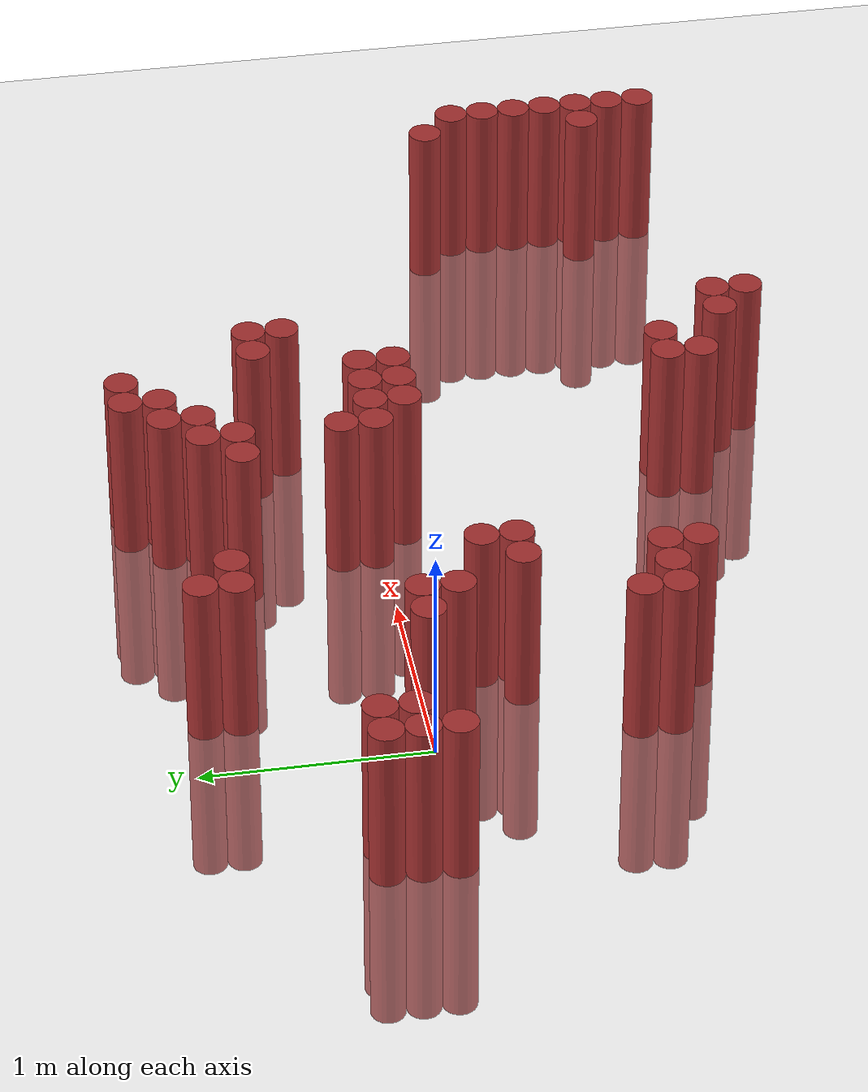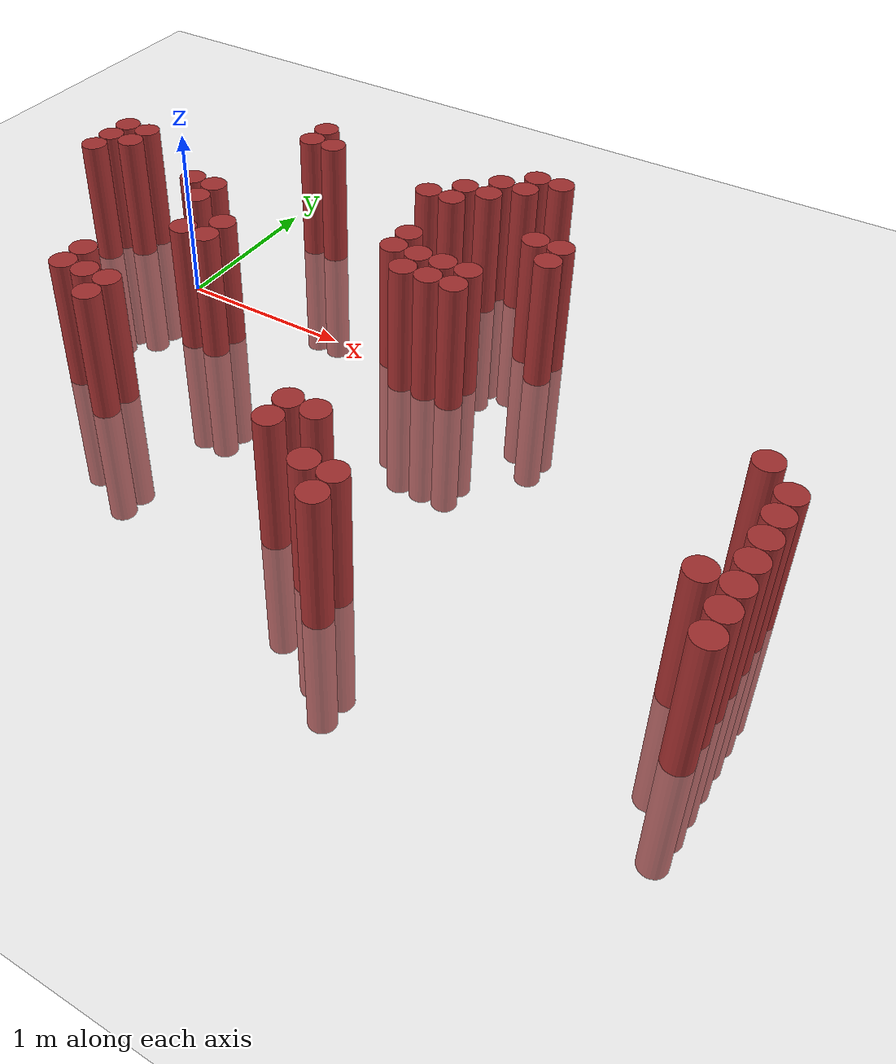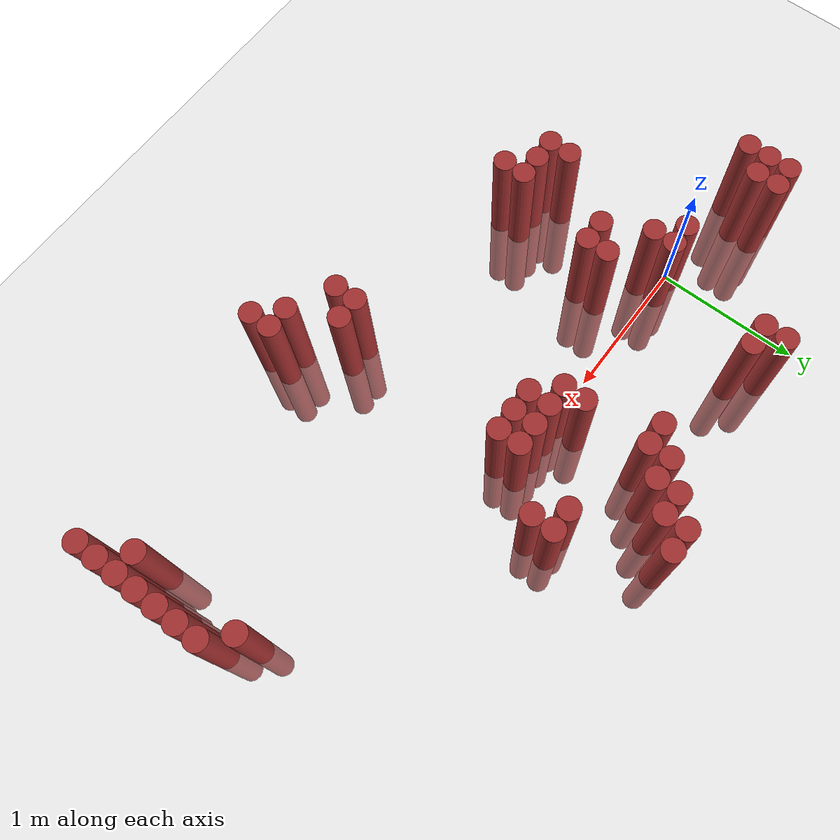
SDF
<sdf version="1.6">
 <world name="default">
  <model name="ground_plane">
   <static>1</static>
   <link name="link">
    <collision name="collision">
     <geometry><plane><normal>0 0 1</normal><size>100 100</size></plane></geometry>
     <surface><friction><ode><mu>100</mu><mu2>50</mu2></ode></friction></surface>
    </collision>
    <visual name="visual">
     <cast_shadows>0</cast_shadows>
     <geometry><plane><normal>0 0 1</normal><size>100 100</size></plane></geometry>
     <material>
      <script><uri>file://media/materials/scripts/gazebo.material</uri><name>Gazebo/Grey</name></script>
     </material>
    </visual>
   </link>
  </model>
  <model name="unit_cylinder_349">
   <static>1</static>
   <pose>-0.725000 0.025000 0.000000 0.000000 0.000000 0.000000</pose>
   <link name="link">
    <inertial>
     <mass>1</mass>
     <inertia><ixx>0.145833</ixx><ixy>0</ixy><ixz>0</ixz><iyy>0.145833</iyy><iyz>0</iyz><izz>0.125</izz></inertia>
    </inertial>
    <collision name="collision">
     <geometry><cylinder><radius>0.075000</radius><length>1.5</length></cylinder></geometry>
    </collision>
    <visual name="visual">
     <geometry><cylinder><radius>0.075000</radius><length>1.5</length></cylinder></geometry>
     <material>
      <ambient>0.648000 0.192000 0.192000 1</ambient>
      <diffuse>0.648000 0.192000 0.192000 1</diffuse>
     </material>
     <material>
      <script><name>Gazebo/Grey</name><uri>file://media/materials/scripts/gazebo.material</uri></script>
     </material>
    </visual>
   </link>
  </model>
  <model name="unit_cylinder_350">
   <static>1</static>
   <pose>-0.725000 0.175000 0.000000 0.000000 0.000000 0.000000</pose>
   <link name="link">
    <inertial>
     <mass>1</mass>
     <inertia><ixx>0.145833</ixx><ixy>0</ixy><ixz>0</ixz><iyy>0.145833</iyy><iyz>0</iyz><izz>0.125</izz></inertia>
    </inertial>
    <collision name="collision">
     <geometry><cylinder><radius>0.075000</radius><length>1.5</length></cylinder></geometry>
    </collision>
    <visual name="visual">
     <geometry><cylinder><radius>0.075000</radius><length>1.5</length></cylinder></geometry>
     <material>
      <ambient>0.648000 0.192000 0.192000 1</ambient>
      <diffuse>0.648000 0.192000 0.192000 1</diffuse>
     </material>
     <material>
      <script><name>Gazebo/Grey</name><uri>file://media/materials/scripts/gazebo.material</uri></script>
     </material>
    </visual>
   </link>
  </model>
  <model name="unit_cylinder_351">
   <static>1</static>
   <pose>-0.725000 0.325000 0.000000 0.000000 0.000000 0.000000</pose>
   <link name="link">
    <inertial>
     <mass>1</mass>
     <inertia><ixx>0.145833</ixx><ixy>0</ixy><ixz>0</ixz><iyy>0.145833</iyy><iyz>0</iyz><izz>0.125</izz></inertia>
    </inertial>
    <collision name="collision">
     <geometry><cylinder><radius>0.075000</radius><length>1.5</length></cylinder></geometry>
    </collision>
    <visual name="visual">
     <geometry><cylinder><radius>0.075000</radius><length>1.5</length></cylinder></geometry>
     <material>
      <ambient>0.648000 0.192000 0.192000 1</ambient>
      <diffuse>0.648000 0.192000 0.192000 1</diffuse>
     </material>
     <material>
      <script><name>Gazebo/Grey</name><uri>file://media/materials/scripts/gazebo.material</uri></script>
     </material>
    </visual>
   </link>
  </model>
  <model name="unit_cylinder_352">
   <static>1</static>
   <pose>-0.575000 0.175000 0.000000 0.000000 0.000000 0.000000</pose>
   <link name="link">
    <inertial>
     <mass>1</mass>
     <inertia><ixx>0.145833</ixx><ixy>0</ixy><ixz>0</ixz><iyy>0.145833</iyy><iyz>0</iyz><izz>0.125</izz></inertia>
    </inertial>
    <collision name="collision">
     <geometry><cylinder><radius>0.075000</radius><length>1.5</length></cylinder></geometry>
    </collision>
    <visual name="visual">
     <geometry><cylinder><radius>0.075000</radius><length>1.5</length></cylinder></geometry>
     <material>
      <ambient>0.648000 0.192000 0.192000 1</ambient>
      <diffuse>0.648000 0.192000 0.192000 1</diffuse>
     </material>
     <material>
      <script><name>Gazebo/Grey</name><uri>file://media/materials/scripts/gazebo.material</uri></script>
     </material>
    </visual>
   </link>
  </model>
  <model name="unit_cylinder_353">
   <static>1</static>
   <pose>-0.575000 0.325000 0.000000 0.000000 0.000000 0.000000</pose>
   <link name="link">
    <inertial>
     <mass>1</mass>
     <inertia><ixx>0.145833</ixx><ixy>0</ixy><ixz>0</ixz><iyy>0.145833</iyy><iyz>0</iyz><izz>0.125</izz></inertia>
    </inertial>
    <collision name="collision">
     <geometry><cylinder><radius>0.075000</radius><length>1.5</length></cylinder></geometry>
    </collision>
    <visual name="visual">
     <geometry><cylinder><radius>0.075000</radius><length>1.5</length></cylinder></geometry>
     <material>
      <ambient>0.648000 0.192000 0.192000 1</ambient>
      <diffuse>0.648000 0.192000 0.192000 1</diffuse>
     </material>
     <material>
      <script><name>Gazebo/Grey</name><uri>file://media/materials/scripts/gazebo.material</uri></script>
     </material>
    </visual>
   </link>
  </model>
  <model name="unit_cylinder_360">
   <static>1</static>
   <pose>0.025000 -1.025000 0.000000 0.000000 0.000000 0.000000</pose>
   <link name="link">
    <inertial>
     <mass>1</mass>
     <inertia><ixx>0.145833</ixx><ixy>0</ixy><ixz>0</ixz><iyy>0.145833</iyy><iyz>0</iyz><izz>0.125</izz></inertia>
    </inertial>
    <collision name="collision">
     <geometry><cylinder><radius>0.075000</radius><length>1.5</length></cylinder></geometry>
    </collision>
    <visual name="visual">
     <geometry><cylinder><radius>0.075000</radius><length>1.5</length></cylinder></geometry>
     <material>
      <ambient>0.648000 0.192000 0.192000 1</ambient>
      <diffuse>0.648000 0.192000 0.192000 1</diffuse>
     </material>
     <material>
      <script><name>Gazebo/Grey</name><uri>file://media/materials/scripts/gazebo.material</uri></script>
     </material>
    </visual>
   </link>
  </model>
  <model name="unit_cylinder_361">
   <static>1</static>
   <pose>0.025000 -0.875000 0.000000 0.000000 0.000000 0.000000</pose>
   <link name="link">
    <inertial>
     <mass>1</mass>
     <inertia><ixx>0.145833</ixx><ixy>0</ixy><ixz>0</ixz><iyy>0.145833</iyy><iyz>0</iyz><izz>0.125</izz></inertia>
    </inertial>
    <collision name="collision">
     <geometry><cylinder><radius>0.075000</radius><length>1.5</length></cylinder></geometry>
    </collision>
    <visual name="visual">
     <geometry><cylinder><radius>0.075000</radius><length>1.5</length></cylinder></geometry>
     <material>
      <ambient>0.648000 0.192000 0.192000 1</ambient>
      <diffuse>0.648000 0.192000 0.192000 1</diffuse>
     </material>
     <material>
      <script><name>Gazebo/Grey</name><uri>file://media/materials/scripts/gazebo.material</uri></script>
     </material>
    </visual>
   </link>
  </model>
  <model name="unit_cylinder_362">
   <static>1</static>
   <pose>0.025000 0.025000 0.000000 0.000000 0.000000 0.000000</pose>
   <link name="link">
    <inertial>
     <mass>1</mass>
     <inertia><ixx>0.145833</ixx><ixy>0</ixy><ixz>0</ixz><iyy>0.145833</iyy><iyz>0</iyz><izz>0.125</izz></inertia>
    </inertial>
    <collision name="collision">
     <geometry><cylinder><radius>0.075000</radius><length>1.5</length></cylinder></geometry>
    </collision>
    <visual name="visual">
     <geometry><cylinder><radius>0.075000</radius><length>1.5</length></cylinder></geometry>
     <material>
      <ambient>0.648000 0.192000 0.192000 1</ambient>
      <diffuse>0.648000 0.192000 0.192000 1</diffuse>
     </material>
     <material>
      <script><name>Gazebo/Grey</name><uri>file://media/materials/scripts/gazebo.material</uri></script>
     </material>
    </visual>
   </link>
  </model>
  <model name="unit_cylinder_365">
   <static>1</static>
   <pose>0.175000 -1.025000 0.000000 0.000000 0.000000 0.000000</pose>
   <link name="link">
    <inertial>
     <mass>1</mass>
     <inertia><ixx>0.145833</ixx><ixy>0</ixy><ixz>0</ixz><iyy>0.145833</iyy><iyz>0</iyz><izz>0.125</izz></inertia>
    </inertial>
    <collision name="collision">
     <geometry><cylinder><radius>0.075000</radius><length>1.5</length></cylinder></geometry>
    </collision>
    <visual name="visual">
     <geometry><cylinder><radius>0.075000</radius><length>1.5</length></cylinder></geometry>
     <material>
      <ambient>0.648000 0.192000 0.192000 1</ambient>
      <diffuse>0.648000 0.192000 0.192000 1</diffuse>
     </material>
     <material>
      <script><name>Gazebo/Grey</name><uri>file://media/materials/scripts/gazebo.material</uri></script>
     </material>
    </visual>
   </link>
  </model>
  <model name="unit_cylinder_366">
   <static>1</static>
   <pose>0.175000 -0.125000 0.000000 0.000000 0.000000 0.000000</pose>
   <link name="link">
    <inertial>
     <mass>1</mass>
     <inertia><ixx>0.145833</ixx><ixy>0</ixy><ixz>0</ixz><iyy>0.145833</iyy><iyz>0</iyz><izz>0.125</izz></inertia>
    </inertial>
    <collision name="collision">
     <geometry><cylinder><radius>0.075000</radius><length>1.5</length></cylinder></geometry>
    </collision>
    <visual name="visual">
     <geometry><cylinder><radius>0.075000</radius><length>1.5</length></cylinder></geometry>
     <material>
      <ambient>0.648000 0.192000 0.192000 1</ambient>
      <diffuse>0.648000 0.192000 0.192000 1</diffuse>
     </material>
     <material>
      <script><name>Gazebo/Grey</name><uri>file://media/materials/scripts/gazebo.material</uri></script>
     </material>
    </visual>
   </link>
  </model>
  <model name="unit_cylinder_367">
   <static>1</static>
   <pose>0.175000 0.025000 0.000000 0.000000 0.000000 0.000000</pose>
   <link name="link">
    <inertial>
     <mass>1</mass>
     <inertia><ixx>0.145833</ixx><ixy>0</ixy><ixz>0</ixz><iyy>0.145833</iyy><iyz>0</iyz><izz>0.125</izz></inertia>
    </inertial>
    <collision name="collision">
     <geometry><cylinder><radius>0.075000</radius><length>1.5</length></cylinder></geometry>
    </collision>
    <visual name="visual">
     <geometry><cylinder><radius>0.075000</radius><length>1.5</length></cylinder></geometry>
     <material>
      <ambient>0.648000 0.192000 0.192000 1</ambient>
      <diffuse>0.648000 0.192000 0.192000 1</diffuse>
     </material>
     <material>
      <script><name>Gazebo/Grey</name><uri>file://media/materials/scripts/gazebo.material</uri></script>
     </material>
    </visual>
   </link>
  </model>
  <model name="unit_cylinder_369">
   <static>1</static>
   <pose>0.325000 -1.175000 0.000000 0.000000 0.000000 0.000000</pose>
   <link name="link">
    <inertial>
     <mass>1</mass>
     <inertia><ixx>0.145833</ixx><ixy>0</ixy><ixz>0</ixz><iyy>0.145833</iyy><iyz>0</iyz><izz>0.125</izz></inertia>
    </inertial>
    <collision name="collision">
     <geometry><cylinder><radius>0.075000</radius><length>1.5</length></cylinder></geometry>
    </collision>
    <visual name="visual">
     <geometry><cylinder><radius>0.075000</radius><length>1.5</length></cylinder></geometry>
     <material>
      <ambient>0.648000 0.192000 0.192000 1</ambient>
      <diffuse>0.648000 0.192000 0.192000 1</diffuse>
     </material>
     <material>
      <script><name>Gazebo/Grey</name><uri>file://media/materials/scripts/gazebo.material</uri></script>
     </material>
    </visual>
   </link>
  </model>
  <model name="unit_cylinder_370">
   <static>1</static>
   <pose>0.325000 -1.025000 0.000000 0.000000 0.000000 0.000000</pose>
   <link name="link">
    <inertial>
     <mass>1</mass>
     <inertia><ixx>0.145833</ixx><ixy>0</ixy><ixz>0</ixz><iyy>0.145833</iyy><iyz>0</iyz><izz>0.125</izz></inertia>
    </inertial>
    <collision name="collision">
     <geometry><cylinder><radius>0.075000</radius><length>1.5</length></cylinder></geometry>
    </collision>
    <visual name="visual">
     <geometry><cylinder><radius>0.075000</radius><length>1.5</length></cylinder></geometry>
     <material>
      <ambient>0.648000 0.192000 0.192000 1</ambient>
      <diffuse>0.648000 0.192000 0.192000 1</diffuse>
     </material>
     <material>
      <script><name>Gazebo/Grey</name><uri>file://media/materials/scripts/gazebo.material</uri></script>
     </material>
    </visual>
   </link>
  </model>
  <model name="unit_cylinder_371">
   <static>1</static>
   <pose>0.325000 -0.425000 0.000000 0.000000 0.000000 0.000000</pose>
   <link name="link">
    <inertial>
     <mass>1</mass>
     <inertia><ixx>0.145833</ixx><ixy>0</ixy><ixz>0</ixz><iyy>0.145833</iyy><iyz>0</iyz><izz>0.125</izz></inertia>
    </inertial>
    <collision name="collision">
     <geometry><cylinder><radius>0.075000</radius><length>1.5</length></cylinder></geometry>
    </collision>
    <visual name="visual">
     <geometry><cylinder><radius>0.075000</radius><length>1.5</length></cylinder></geometry>
     <material>
      <ambient>0.648000 0.192000 0.192000 1</ambient>
      <diffuse>0.648000 0.192000 0.192000 1</diffuse>
     </material>
     <material>
      <script><name>Gazebo/Grey</name><uri>file://media/materials/scripts/gazebo.material</uri></script>
     </material>
    </visual>
   </link>
  </model>
  <model name="unit_cylinder_372">
   <static>1</static>
   <pose>0.325000 0.775000 0.000000 0.000000 0.000000 0.000000</pose>
   <link name="link">
    <inertial>
     <mass>1</mass>
     <inertia><ixx>0.145833</ixx><ixy>0</ixy><ixz>0</ixz><iyy>0.145833</iyy><iyz>0</iyz><izz>0.125</izz></inertia>
    </inertial>
    <collision name="collision">
     <geometry><cylinder><radius>0.075000</radius><length>1.5</length></cylinder></geometry>
    </collision>
    <visual name="visual">
     <geometry><cylinder><radius>0.075000</radius><length>1.5</length></cylinder></geometry>
     <material>
      <ambient>0.648000 0.192000 0.192000 1</ambient>
      <diffuse>0.648000 0.192000 0.192000 1</diffuse>
     </material>
     <material>
      <script><name>Gazebo/Grey</name><uri>file://media/materials/scripts/gazebo.material</uri></script>
     </material>
    </visual>
   </link>
  </model>
  <model name="unit_cylinder_373">
   <static>1</static>
   <pose>0.325000 0.925000 0.000000 0.000000 0.000000 0.000000</pose>
   <link name="link">
    <inertial>
     <mass>1</mass>
     <inertia><ixx>0.145833</ixx><ixy>0</ixy><ixz>0</ixz><iyy>0.145833</iyy><iyz>0</iyz><izz>0.125</izz></inertia>
    </inertial>
    <collision name="collision">
     <geometry><cylinder><radius>0.075000</radius><length>1.5</length></cylinder></geometry>
    </collision>
    <visual name="visual">
     <geometry><cylinder><radius>0.075000</radius><length>1.5</length></cylinder></geometry>
     <material>
      <ambient>0.648000 0.192000 0.192000 1</ambient>
      <diffuse>0.648000 0.192000 0.192000 1</diffuse>
     </material>
     <material>
      <script><name>Gazebo/Grey</name><uri>file://media/materials/scripts/gazebo.material</uri></script>
     </material>
    </visual>
   </link>
  </model>
  <model name="unit_cylinder_375">
   <static>1</static>
   <pose>0.475000 -0.425000 0.000000 0.000000 0.000000 0.000000</pose>
   <link name="link">
    <inertial>
     <mass>1</mass>
     <inertia><ixx>0.145833</ixx><ixy>0</ixy><ixz>0</ixz><iyy>0.145833</iyy><iyz>0</iyz><izz>0.125</izz></inertia>
    </inertial>
    <collision name="collision">
     <geometry><cylinder><radius>0.075000</radius><length>1.5</length></cylinder></geometry>
    </collision>
    <visual name="visual">
     <geometry><cylinder><radius>0.075000</radius><length>1.5</length></cylinder></geometry>
     <material>
      <ambient>0.648000 0.192000 0.192000 1</ambient>
      <diffuse>0.648000 0.192000 0.192000 1</diffuse>
     </material>
     <material>
      <script><name>Gazebo/Grey</name><uri>file://media/materials/scripts/gazebo.material</uri></script>
     </material>
    </visual>
   </link>
  </model>
  <model name="unit_cylinder_376">
   <static>1</static>
   <pose>0.475000 -0.275000 0.000000 0.000000 0.000000 0.000000</pose>
   <link name="link">
    <inertial>
     <mass>1</mass>
     <inertia><ixx>0.145833</ixx><ixy>0</ixy><ixz>0</ixz><iyy>0.145833</iyy><iyz>0</iyz><izz>0.125</izz></inertia>
    </inertial>
    <collision name="collision">
     <geometry><cylinder><radius>0.075000</radius><length>1.5</length></cylinder></geometry>
    </collision>
    <visual name="visual">
     <geometry><cylinder><radius>0.075000</radius><length>1.5</length></cylinder></geometry>
     <material>
      <ambient>0.648000 0.192000 0.192000 1</ambient>
      <diffuse>0.648000 0.192000 0.192000 1</diffuse>
     </material>
     <material>
      <script><name>Gazebo/Grey</name><uri>file://media/materials/scripts/gazebo.material</uri></script>
     </material>
    </visual>
   </link>
  </model>
  <model name="unit_cylinder_377">
   <static>1</static>
   <pose>0.475000 0.775000 0.000000 0.000000 0.000000 0.000000</pose>
   <link name="link">
    <inertial>
     <mass>1</mass>
     <inertia><ixx>0.145833</ixx><ixy>0</ixy><ixz>0</ixz><iyy>0.145833</iyy><iyz>0</iyz><izz>0.125</izz></inertia>
    </inertial>
    <collision name="collision">
     <geometry><cylinder><radius>0.075000</radius><length>1.5</length></cylinder></geometry>
    </collision>
    <visual name="visual">
     <geometry><cylinder><radius>0.075000</radius><length>1.5</length></cylinder></geometry>
     <material>
      <ambient>0.648000 0.192000 0.192000 1</ambient>
      <diffuse>0.648000 0.192000 0.192000 1</diffuse>
     </material>
     <material>
      <script><name>Gazebo/Grey</name><uri>file://media/materials/scripts/gazebo.material</uri></script>
     </material>
    </visual>
   </link>
  </model>
  <model name="unit_cylinder_388">
   <static>1</static>
   <pose>1.225000 0.625000 0.000000 0.000000 0.000000 0.000000</pose>
   <link name="link">
    <inertial>
     <mass>1</mass>
     <inertia><ixx>0.145833</ixx><ixy>0</ixy><ixz>0</ixz><iyy>0.145833</iyy><iyz>0</iyz><izz>0.125</izz></inertia>
    </inertial>
    <collision name="collision">
     <geometry><cylinder><radius>0.075000</radius><length>1.5</length></cylinder></geometry>
    </collision>
    <visual name="visual">
     <geometry><cylinder><radius>0.075000</radius><length>1.5</length></cylinder></geometry>
     <material>
      <ambient>0.648000 0.192000 0.192000 1</ambient>
      <diffuse>0.648000 0.192000 0.192000 1</diffuse>
     </material>
     <material>
      <script><name>Gazebo/Grey</name><uri>file://media/materials/scripts/gazebo.material</uri></script>
     </material>
    </visual>
   </link>
  </model>
  <model name="unit_cylinder_389">
   <static>1</static>
   <pose>1.375000 0.025000 0.000000 0.000000 0.000000 0.000000</pose>
   <link name="link">
    <inertial>
     <mass>1</mass>
     <inertia><ixx>0.145833</ixx><ixy>0</ixy><ixz>0</ixz><iyy>0.145833</iyy><iyz>0</iyz><izz>0.125</izz></inertia>
    </inertial>
    <collision name="collision">
     <geometry><cylinder><radius>0.075000</radius><length>1.5</length></cylinder></geometry>
    </collision>
    <visual name="visual">
     <geometry><cylinder><radius>0.075000</radius><length>1.5</length></cylinder></geometry>
     <material>
      <ambient>0.648000 0.192000 0.192000 1</ambient>
      <diffuse>0.648000 0.192000 0.192000 1</diffuse>
     </material>
     <material>
      <script><name>Gazebo/Grey</name><uri>file://media/materials/scripts/gazebo.material</uri></script>
     </material>
    </visual>
   </link>
  </model>
  <model name="unit_cylinder_390">
   <static>1</static>
   <pose>1.375000 0.175000 0.000000 0.000000 0.000000 0.000000</pose>
   <link name="link">
    <inertial>
     <mass>1</mass>
     <inertia><ixx>0.145833</ixx><ixy>0</ixy><ixz>0</ixz><iyy>0.145833</iyy><iyz>0</iyz><izz>0.125</izz></inertia>
    </inertial>
    <collision name="collision">
     <geometry><cylinder><radius>0.075000</radius><length>1.5</length></cylinder></geometry>
    </collision>
    <visual name="visual">
     <geometry><cylinder><radius>0.075000</radius><length>1.5</length></cylinder></geometry>
     <material>
      <ambient>0.648000 0.192000 0.192000 1</ambient>
      <diffuse>0.648000 0.192000 0.192000 1</diffuse>
     </material>
     <material>
      <script><name>Gazebo/Grey</name><uri>file://media/materials/scripts/gazebo.material</uri></script>
     </material>
    </visual>
   </link>
  </model>
  <model name="unit_cylinder_391">
   <static>1</static>
   <pose>1.375000 0.625000 0.000000 0.000000 0.000000 0.000000</pose>
   <link name="link">
    <inertial>
     <mass>1</mass>
     <inertia><ixx>0.145833</ixx><ixy>0</ixy><ixz>0</ixz><iyy>0.145833</iyy><iyz>0</iyz><izz>0.125</izz></inertia>
    </inertial>
    <collision name="collision">
     <geometry><cylinder><radius>0.075000</radius><length>1.5</length></cylinder></geometry>
    </collision>
    <visual name="visual">
     <geometry><cylinder><radius>0.075000</radius><length>1.5</length></cylinder></geometry>
     <material>
      <ambient>0.648000 0.192000 0.192000 1</ambient>
      <diffuse>0.648000 0.192000 0.192000 1</diffuse>
     </material>
     <material>
      <script><name>Gazebo/Grey</name><uri>file://media/materials/scripts/gazebo.material</uri></script>
     </material>
    </visual>
   </link>
  </model>
  <model name="unit_cylinder_392">
   <static>1</static>
   <pose>1.375000 0.775000 0.000000 0.000000 0.000000 0.000000</pose>
   <link name="link">
    <inertial>
     <mass>1</mass>
     <inertia><ixx>0.145833</ixx><ixy>0</ixy><ixz>0</ixz><iyy>0.145833</iyy><iyz>0</iyz><izz>0.125</izz></inertia>
    </inertial>
    <collision name="collision">
     <geometry><cylinder><radius>0.075000</radius><length>1.5</length></cylinder></geometry>
    </collision>
    <visual name="visual">
     <geometry><cylinder><radius>0.075000</radius><length>1.5</length></cylinder></geometry>
     <material>
      <ambient>0.648000 0.192000 0.192000 1</ambient>
      <diffuse>0.648000 0.192000 0.192000 1</diffuse>
     </material>
     <material>
      <script><name>Gazebo/Grey</name><uri>file://media/materials/scripts/gazebo.material</uri></script>
     </material>
    </visual>
   </link>
  </model>
  <model name="unit_cylinder_393">
   <static>1</static>
   <pose>1.525000 -0.125000 0.000000 0.000000 0.000000 0.000000</pose>
   <link name="link">
    <inertial>
     <mass>1</mass>
     <inertia><ixx>0.145833</ixx><ixy>0</ixy><ixz>0</ixz><iyy>0.145833</iyy><iyz>0</iyz><izz>0.125</izz></inertia>
    </inertial>
    <collision name="collision">
     <geometry><cylinder><radius>0.075000</radius><length>1.5</length></cylinder></geometry>
    </collision>
    <visual name="visual">
     <geometry><cylinder><radius>0.075000</radius><length>1.5</length></cylinder></geometry>
     <material>
      <ambient>0.648000 0.192000 0.192000 1</ambient>
      <diffuse>0.648000 0.192000 0.192000 1</diffuse>
     </material>
     <material>
      <script><name>Gazebo/Grey</name><uri>file://media/materials/scripts/gazebo.material</uri></script>
     </material>
    </visual>
   </link>
  </model>
  <model name="unit_cylinder_394">
   <static>1</static>
   <pose>1.525000 0.025000 0.000000 0.000000 0.000000 0.000000</pose>
   <link name="link">
    <inertial>
     <mass>1</mass>
     <inertia><ixx>0.145833</ixx><ixy>0</ixy><ixz>0</ixz><iyy>0.145833</iyy><iyz>0</iyz><izz>0.125</izz></inertia>
    </inertial>
    <collision name="collision">
     <geometry><cylinder><radius>0.075000</radius><length>1.5</length></cylinder></geometry>
    </collision>
    <visual name="visual">
     <geometry><cylinder><radius>0.075000</radius><length>1.5</length></cylinder></geometry>
     <material>
      <ambient>0.648000 0.192000 0.192000 1</ambient>
      <diffuse>0.648000 0.192000 0.192000 1</diffuse>
     </material>
     <material>
      <script><name>Gazebo/Grey</name><uri>file://media/materials/scripts/gazebo.material</uri></script>
     </material>
    </visual>
   </link>
  </model>
  <model name="unit_cylinder_395">
   <static>1</static>
   <pose>1.525000 0.775000 0.000000 0.000000 0.000000 0.000000</pose>
   <link name="link">
    <inertial>
     <mass>1</mass>
     <inertia><ixx>0.145833</ixx><ixy>0</ixy><ixz>0</ixz><iyy>0.145833</iyy><iyz>0</iyz><izz>0.125</izz></inertia>
    </inertial>
    <collision name="collision">
     <geometry><cylinder><radius>0.075000</radius><length>1.5</length></cylinder></geometry>
    </collision>
    <visual name="visual">
     <geometry><cylinder><radius>0.075000</radius><length>1.5</length></cylinder></geometry>
     <material>
      <ambient>0.648000 0.192000 0.192000 1</ambient>
      <diffuse>0.648000 0.192000 0.192000 1</diffuse>
     </material>
     <material>
      <script><name>Gazebo/Grey</name><uri>file://media/materials/scripts/gazebo.material</uri></script>
     </material>
    </visual>
   </link>
  </model>
  <model name="unit_cylinder_396">
   <static>1</static>
   <pose>1.525000 0.925000 0.000000 0.000000 0.000000 0.000000</pose>
   <link name="link">
    <inertial>
     <mass>1</mass>
     <inertia><ixx>0.145833</ixx><ixy>0</ixy><ixz>0</ixz><iyy>0.145833</iyy><iyz>0</iyz><izz>0.125</izz></inertia>
    </inertial>
    <collision name="collision">
     <geometry><cylinder><radius>0.075000</radius><length>1.5</length></cylinder></geometry>
    </collision>
    <visual name="visual">
     <geometry><cylinder><radius>0.075000</radius><length>1.5</length></cylinder></geometry>
     <material>
      <ambient>0.648000 0.192000 0.192000 1</ambient>
      <diffuse>0.648000 0.192000 0.192000 1</diffuse>
     </material>
     <material>
      <script><name>Gazebo/Grey</name><uri>file://media/materials/scripts/gazebo.material</uri></script>
     </material>
    </visual>
   </link>
  </model>
  <model name="unit_cylinder_397">
   <static>1</static>
   <pose>1.675000 -1.475000 0.000000 0.000000 0.000000 0.000000</pose>
   <link name="link">
    <inertial>
     <mass>1</mass>
     <inertia><ixx>0.145833</ixx><ixy>0</ixy><ixz>0</ixz><iyy>0.145833</iyy><iyz>0</iyz><izz>0.125</izz></inertia>
    </inertial>
    <collision name="collision">
     <geometry><cylinder><radius>0.075000</radius><length>1.5</length></cylinder></geometry>
    </collision>
    <visual name="visual">
     <geometry><cylinder><radius>0.075000</radius><length>1.5</length></cylinder></geometry>
     <material>
      <ambient>0.648000 0.192000 0.192000 1</ambient>
      <diffuse>0.648000 0.192000 0.192000 1</diffuse>
     </material>
     <material>
      <script><name>Gazebo/Grey</name><uri>file://media/materials/scripts/gazebo.material</uri></script>
     </material>
    </visual>
   </link>
  </model>
  <model name="unit_cylinder_398">
   <static>1</static>
   <pose>1.675000 -1.325000 0.000000 0.000000 0.000000 0.000000</pose>
   <link name="link">
    <inertial>
     <mass>1</mass>
     <inertia><ixx>0.145833</ixx><ixy>0</ixy><ixz>0</ixz><iyy>0.145833</iyy><iyz>0</iyz><izz>0.125</izz></inertia>
    </inertial>
    <collision name="collision">
     <geometry><cylinder><radius>0.075000</radius><length>1.5</length></cylinder></geometry>
    </collision>
    <visual name="visual">
     <geometry><cylinder><radius>0.075000</radius><length>1.5</length></cylinder></geometry>
     <material>
      <ambient>0.648000 0.192000 0.192000 1</ambient>
      <diffuse>0.648000 0.192000 0.192000 1</diffuse>
     </material>
     <material>
      <script><name>Gazebo/Grey</name><uri>file://media/materials/scripts/gazebo.material</uri></script>
     </material>
    </visual>
   </link>
  </model>
  <model name="unit_cylinder_399">
   <static>1</static>
   <pose>1.675000 -0.125000 0.000000 0.000000 0.000000 0.000000</pose>
   <link name="link">
    <inertial>
     <mass>1</mass>
     <inertia><ixx>0.145833</ixx><ixy>0</ixy><ixz>0</ixz><iyy>0.145833</iyy><iyz>0</iyz><izz>0.125</izz></inertia>
    </inertial>
    <collision name="collision">
     <geometry><cylinder><radius>0.075000</radius><length>1.5</length></cylinder></geometry>
    </collision>
    <visual name="visual">
     <geometry><cylinder><radius>0.075000</radius><length>1.5</length></cylinder></geometry>
     <material>
      <ambient>0.648000 0.192000 0.192000 1</ambient>
      <diffuse>0.648000 0.192000 0.192000 1</diffuse>
     </material>
     <material>
      <script><name>Gazebo/Grey</name><uri>file://media/materials/scripts/gazebo.material</uri></script>
     </material>
    </visual>
   </link>
  </model>
  <model name="unit_cylinder_400">
   <static>1</static>
   <pose>1.675000 0.025000 0.000000 0.000000 0.000000 0.000000</pose>
   <link name="link">
    <inertial>
     <mass>1</mass>
     <inertia><ixx>0.145833</ixx><ixy>0</ixy><ixz>0</ixz><iyy>0.145833</iyy><iyz>0</iyz><izz>0.125</izz></inertia>
    </inertial>
    <collision name="collision">
     <geometry><cylinder><radius>0.075000</radius><length>1.5</length></cylinder></geometry>
    </collision>
    <visual name="visual">
     <geometry><cylinder><radius>0.075000</radius><length>1.5</length></cylinder></geometry>
     <material>
      <ambient>0.648000 0.192000 0.192000 1</ambient>
      <diffuse>0.648000 0.192000 0.192000 1</diffuse>
     </material>
     <material>
      <script><name>Gazebo/Grey</name><uri>file://media/materials/scripts/gazebo.material</uri></script>
     </material>
    </visual>
   </link>
  </model>
  <model name="unit_cylinder_401">
   <static>1</static>
   <pose>1.675000 0.925000 0.000000 0.000000 0.000000 0.000000</pose>
   <link name="link">
    <inertial>
     <mass>1</mass>
     <inertia><ixx>0.145833</ixx><ixy>0</ixy><ixz>0</ixz><iyy>0.145833</iyy><iyz>0</iyz><izz>0.125</izz></inertia>
    </inertial>
    <collision name="collision">
     <geometry><cylinder><radius>0.075000</radius><length>1.5</length></cylinder></geometry>
    </collision>
    <visual name="visual">
     <geometry><cylinder><radius>0.075000</radius><length>1.5</length></cylinder></geometry>
     <material>
      <ambient>0.648000 0.192000 0.192000 1</ambient>
      <diffuse>0.648000 0.192000 0.192000 1</diffuse>
     </material>
     <material>
      <script><name>Gazebo/Grey</name><uri>file://media/materials/scripts/gazebo.material</uri></script>
     </material>
    </visual>
   </link>
  </model>
  <model name="unit_cylinder_402">
   <static>1</static>
   <pose>1.675000 1.075000 0.000000 0.000000 0.000000 0.000000</pose>
   <link name="link">
    <inertial>
     <mass>1</mass>
     <inertia><ixx>0.145833</ixx><ixy>0</ixy><ixz>0</ixz><iyy>0.145833</iyy><iyz>0</iyz><izz>0.125</izz></inertia>
    </inertial>
    <collision name="collision">
     <geometry><cylinder><radius>0.075000</radius><length>1.5</length></cylinder></geometry>
    </collision>
    <visual name="visual">
     <geometry><cylinder><radius>0.075000</radius><length>1.5</length></cylinder></geometry>
     <material>
      <ambient>0.648000 0.192000 0.192000 1</ambient>
      <diffuse>0.648000 0.192000 0.192000 1</diffuse>
     </material>
     <material>
      <script><name>Gazebo/Grey</name><uri>file://media/materials/scripts/gazebo.material</uri></script>
     </material>
    </visual>
   </link>
  </model>
  <model name="unit_cylinder_404">
   <static>1</static>
   <pose>1.825000 -1.325000 0.000000 0.000000 0.000000 0.000000</pose>
   <link name="link">
    <inertial>
     <mass>1</mass>
     <inertia><ixx>0.145833</ixx><ixy>0</ixy><ixz>0</ixz><iyy>0.145833</iyy><iyz>0</iyz><izz>0.125</izz></inertia>
    </inertial>
    <collision name="collision">
     <geometry><cylinder><radius>0.075000</radius><length>1.5</length></cylinder></geometry>
    </collision>
    <visual name="visual">
     <geometry><cylinder><radius>0.075000</radius><length>1.5</length></cylinder></geometry>
     <material>
      <ambient>0.648000 0.192000 0.192000 1</ambient>
      <diffuse>0.648000 0.192000 0.192000 1</diffuse>
     </material>
     <material>
      <script><name>Gazebo/Grey</name><uri>file://media/materials/scripts/gazebo.material</uri></script>
     </material>
    </visual>
   </link>
  </model>
  <model name="unit_cylinder_405">
   <static>1</static>
   <pose>1.825000 -0.125000 0.000000 0.000000 0.000000 0.000000</pose>
   <link name="link">
    <inertial>
     <mass>1</mass>
     <inertia><ixx>0.145833</ixx><ixy>0</ixy><ixz>0</ixz><iyy>0.145833</iyy><iyz>0</iyz><izz>0.125</izz></inertia>
    </inertial>
    <collision name="collision">
     <geometry><cylinder><radius>0.075000</radius><length>1.5</length></cylinder></geometry>
    </collision>
    <visual name="visual">
     <geometry><cylinder><radius>0.075000</radius><length>1.5</length></cylinder></geometry>
     <material>
      <ambient>0.648000 0.192000 0.192000 1</ambient>
      <diffuse>0.648000 0.192000 0.192000 1</diffuse>
     </material>
     <material>
      <script><name>Gazebo/Grey</name><uri>file://media/materials/scripts/gazebo.material</uri></script>
     </material>
    </visual>
   </link>
  </model>
  <model name="unit_cylinder_406">
   <static>1</static>
   <pose>1.825000 0.025000 0.000000 0.000000 0.000000 0.000000</pose>
   <link name="link">
    <inertial>
     <mass>1</mass>
     <inertia><ixx>0.145833</ixx><ixy>0</ixy><ixz>0</ixz><iyy>0.145833</iyy><iyz>0</iyz><izz>0.125</izz></inertia>
    </inertial>
    <collision name="collision">
     <geometry><cylinder><radius>0.075000</radius><length>1.5</length></cylinder></geometry>
    </collision>
    <visual name="visual">
     <geometry><cylinder><radius>0.075000</radius><length>1.5</length></cylinder></geometry>
     <material>
      <ambient>0.648000 0.192000 0.192000 1</ambient>
      <diffuse>0.648000 0.192000 0.192000 1</diffuse>
     </material>
     <material>
      <script><name>Gazebo/Grey</name><uri>file://media/materials/scripts/gazebo.material</uri></script>
     </material>
    </visual>
   </link>
  </model>
  <model name="unit_cylinder_407">
   <static>1</static>
   <pose>1.825000 1.075000 0.000000 0.000000 0.000000 0.000000</pose>
   <link name="link">
    <inertial>
     <mass>1</mass>
     <inertia><ixx>0.145833</ixx><ixy>0</ixy><ixz>0</ixz><iyy>0.145833</iyy><iyz>0</iyz><izz>0.125</izz></inertia>
    </inertial>
    <collision name="collision">
     <geometry><cylinder><radius>0.075000</radius><length>1.5</length></cylinder></geometry>
    </collision>
    <visual name="visual">
     <geometry><cylinder><radius>0.075000</radius><length>1.5</length></cylinder></geometry>
     <material>
      <ambient>0.648000 0.192000 0.192000 1</ambient>
      <diffuse>0.648000 0.192000 0.192000 1</diffuse>
     </material>
     <material>
      <script><name>Gazebo/Grey</name><uri>file://media/materials/scripts/gazebo.material</uri></script>
     </material>
    </visual>
   </link>
  </model>
  <model name="unit_cylinder_410">
   <static>1</static>
   <pose>1.975000 -1.625000 0.000000 0.000000 0.000000 0.000000</pose>
   <link name="link">
    <inertial>
     <mass>1</mass>
     <inertia><ixx>0.145833</ixx><ixy>0</ixy><ixz>0</ixz><iyy>0.145833</iyy><iyz>0</iyz><izz>0.125</izz></inertia>
    </inertial>
    <collision name="collision">
     <geometry><cylinder><radius>0.075000</radius><length>1.5</length></cylinder></geometry>
    </collision>
    <visual name="visual">
     <geometry><cylinder><radius>0.075000</radius><length>1.5</length></cylinder></geometry>
     <material>
      <ambient>0.648000 0.192000 0.192000 1</ambient>
      <diffuse>0.648000 0.192000 0.192000 1</diffuse>
     </material>
     <material>
      <script><name>Gazebo/Grey</name><uri>file://media/materials/scripts/gazebo.material</uri></script>
     </material>
    </visual>
   </link>
  </model>
  <model name="unit_cylinder_411">
   <static>1</static>
   <pose>1.975000 0.475000 0.000000 0.000000 0.000000 0.000000</pose>
   <link name="link">
    <inertial>
     <mass>1</mass>
     <inertia><ixx>0.145833</ixx><ixy>0</ixy><ixz>0</ixz><iyy>0.145833</iyy><iyz>0</iyz><izz>0.125</izz></inertia>
    </inertial>
    <collision name="collision">
     <geometry><cylinder><radius>0.075000</radius><length>1.5</length></cylinder></geometry>
    </collision>
    <visual name="visual">
     <geometry><cylinder><radius>0.075000</radius><length>1.5</length></cylinder></geometry>
     <material>
      <ambient>0.648000 0.192000 0.192000 1</ambient>
      <diffuse>0.648000 0.192000 0.192000 1</diffuse>
     </material>
     <material>
      <script><name>Gazebo/Grey</name><uri>file://media/materials/scripts/gazebo.material</uri></script>
     </material>
    </visual>
   </link>
  </model>
  <model name="unit_cylinder_415">
   <static>1</static>
   <pose>2.125000 -1.775000 0.000000 0.000000 0.000000 0.000000</pose>
   <link name="link">
    <inertial>
     <mass>1</mass>
     <inertia><ixx>0.145833</ixx><ixy>0</ixy><ixz>0</ixz><iyy>0.145833</iyy><iyz>0</iyz><izz>0.125</izz></inertia>
    </inertial>
    <collision name="collision">
     <geometry><cylinder><radius>0.075000</radius><length>1.5</length></cylinder></geometry>
    </collision>
    <visual name="visual">
     <geometry><cylinder><radius>0.075000</radius><length>1.5</length></cylinder></geometry>
     <material>
      <ambient>0.648000 0.192000 0.192000 1</ambient>
      <diffuse>0.648000 0.192000 0.192000 1</diffuse>
     </material>
     <material>
      <script><name>Gazebo/Grey</name><uri>file://media/materials/scripts/gazebo.material</uri></script>
     </material>
    </visual>
   </link>
  </model>
  <model name="unit_cylinder_416">
   <static>1</static>
   <pose>2.125000 -1.625000 0.000000 0.000000 0.000000 0.000000</pose>
   <link name="link">
    <inertial>
     <mass>1</mass>
     <inertia><ixx>0.145833</ixx><ixy>0</ixy><ixz>0</ixz><iyy>0.145833</iyy><iyz>0</iyz><izz>0.125</izz></inertia>
    </inertial>
    <collision name="collision">
     <geometry><cylinder><radius>0.075000</radius><length>1.5</length></cylinder></geometry>
    </collision>
    <visual name="visual">
     <geometry><cylinder><radius>0.075000</radius><length>1.5</length></cylinder></geometry>
     <material>
      <ambient>0.648000 0.192000 0.192000 1</ambient>
      <diffuse>0.648000 0.192000 0.192000 1</diffuse>
     </material>
     <material>
      <script><name>Gazebo/Grey</name><uri>file://media/materials/scripts/gazebo.material</uri></script>
     </material>
    </visual>
   </link>
  </model>
  <model name="unit_cylinder_417">
   <static>1</static>
   <pose>2.125000 0.325000 0.000000 0.000000 0.000000 0.000000</pose>
   <link name="link">
    <inertial>
     <mass>1</mass>
     <inertia><ixx>0.145833</ixx><ixy>0</ixy><ixz>0</ixz><iyy>0.145833</iyy><iyz>0</iyz><izz>0.125</izz></inertia>
    </inertial>
    <collision name="collision">
     <geometry><cylinder><radius>0.075000</radius><length>1.5</length></cylinder></geometry>
    </collision>
    <visual name="visual">
     <geometry><cylinder><radius>0.075000</radius><length>1.5</length></cylinder></geometry>
     <material>
      <ambient>0.648000 0.192000 0.192000 1</ambient>
      <diffuse>0.648000 0.192000 0.192000 1</diffuse>
     </material>
     <material>
      <script><name>Gazebo/Grey</name><uri>file://media/materials/scripts/gazebo.material</uri></script>
     </material>
    </visual>
   </link>
  </model>
  <model name="unit_cylinder_418">
   <static>1</static>
   <pose>2.125000 0.475000 0.000000 0.000000 0.000000 0.000000</pose>
   <link name="link">
    <inertial>
     <mass>1</mass>
     <inertia><ixx>0.145833</ixx><ixy>0</ixy><ixz>0</ixz><iyy>0.145833</iyy><iyz>0</iyz><izz>0.125</izz></inertia>
    </inertial>
    <collision name="collision">
     <geometry><cylinder><radius>0.075000</radius><length>1.5</length></cylinder></geometry>
    </collision>
    <visual name="visual">
     <geometry><cylinder><radius>0.075000</radius><length>1.5</length></cylinder></geometry>
     <material>
      <ambient>0.648000 0.192000 0.192000 1</ambient>
      <diffuse>0.648000 0.192000 0.192000 1</diffuse>
     </material>
     <material>
      <script><name>Gazebo/Grey</name><uri>file://media/materials/scripts/gazebo.material</uri></script>
     </material>
    </visual>
   </link>
  </model>
  <model name="unit_cylinder_452">
   <static>1</static>
   <pose>3.625000 -1.325000 0.000000 0.000000 0.000000 0.000000</pose>
   <link name="link">
    <inertial>
     <mass>1</mass>
     <inertia><ixx>0.145833</ixx><ixy>0</ixy><ixz>0</ixz><iyy>0.145833</iyy><iyz>0</iyz><izz>0.125</izz></inertia>
    </inertial>
    <collision name="collision">
     <geometry><cylinder><radius>0.075000</radius><length>1.5</length></cylinder></geometry>
    </collision>
    <visual name="visual">
     <geometry><cylinder><radius>0.075000</radius><length>1.5</length></cylinder></geometry>
     <material>
      <ambient>0.648000 0.192000 0.192000 1</ambient>
      <diffuse>0.648000 0.192000 0.192000 1</diffuse>
     </material>
     <material>
      <script><name>Gazebo/Grey</name><uri>file://media/materials/scripts/gazebo.material</uri></script>
     </material>
    </visual>
   </link>
  </model>
  <model name="unit_cylinder_453">
   <static>1</static>
   <pose>3.625000 -0.575000 0.000000 0.000000 0.000000 0.000000</pose>
   <link name="link">
    <inertial>
     <mass>1</mass>
     <inertia><ixx>0.145833</ixx><ixy>0</ixy><ixz>0</ixz><iyy>0.145833</iyy><iyz>0</iyz><izz>0.125</izz></inertia>
    </inertial>
    <collision name="collision">
     <geometry><cylinder><radius>0.075000</radius><length>1.5</length></cylinder></geometry>
    </collision>
    <visual name="visual">
     <geometry><cylinder><radius>0.075000</radius><length>1.5</length></cylinder></geometry>
     <material>
      <ambient>0.648000 0.192000 0.192000 1</ambient>
      <diffuse>0.648000 0.192000 0.192000 1</diffuse>
     </material>
     <material>
      <script><name>Gazebo/Grey</name><uri>file://media/materials/scripts/gazebo.material</uri></script>
     </material>
    </visual>
   </link>
  </model>
  <model name="unit_cylinder_456">
   <static>1</static>
   <pose>3.775000 -1.625000 0.000000 0.000000 0.000000 0.000000</pose>
   <link name="link">
    <inertial>
     <mass>1</mass>
     <inertia><ixx>0.145833</ixx><ixy>0</ixy><ixz>0</ixz><iyy>0.145833</iyy><iyz>0</iyz><izz>0.125</izz></inertia>
    </inertial>
    <collision name="collision">
     <geometry><cylinder><radius>0.075000</radius><length>1.5</length></cylinder></geometry>
    </collision>
    <visual name="visual">
     <geometry><cylinder><radius>0.075000</radius><length>1.5</length></cylinder></geometry>
     <material>
      <ambient>0.648000 0.192000 0.192000 1</ambient>
      <diffuse>0.648000 0.192000 0.192000 1</diffuse>
     </material>
     <material>
      <script><name>Gazebo/Grey</name><uri>file://media/materials/scripts/gazebo.material</uri></script>
     </material>
    </visual>
   </link>
  </model>
  <model name="unit_cylinder_457">
   <static>1</static>
   <pose>3.775000 -1.475000 0.000000 0.000000 0.000000 0.000000</pose>
   <link name="link">
    <inertial>
     <mass>1</mass>
     <inertia><ixx>0.145833</ixx><ixy>0</ixy><ixz>0</ixz><iyy>0.145833</iyy><iyz>0</iyz><izz>0.125</izz></inertia>
    </inertial>
    <collision name="collision">
     <geometry><cylinder><radius>0.075000</radius><length>1.5</length></cylinder></geometry>
    </collision>
    <visual name="visual">
     <geometry><cylinder><radius>0.075000</radius><length>1.5</length></cylinder></geometry>
     <material>
      <ambient>0.648000 0.192000 0.192000 1</ambient>
      <diffuse>0.648000 0.192000 0.192000 1</diffuse>
     </material>
     <material>
      <script><name>Gazebo/Grey</name><uri>file://media/materials/scripts/gazebo.material</uri></script>
     </material>
    </visual>
   </link>
  </model>
  <model name="unit_cylinder_458">
   <static>1</static>
   <pose>3.775000 -1.325000 0.000000 0.000000 0.000000 0.000000</pose>
   <link name="link">
    <inertial>
     <mass>1</mass>
     <inertia><ixx>0.145833</ixx><ixy>0</ixy><ixz>0</ixz><iyy>0.145833</iyy><iyz>0</iyz><izz>0.125</izz></inertia>
    </inertial>
    <collision name="collision">
     <geometry><cylinder><radius>0.075000</radius><length>1.5</length></cylinder></geometry>
    </collision>
    <visual name="visual">
     <geometry><cylinder><radius>0.075000</radius><length>1.5</length></cylinder></geometry>
     <material>
      <ambient>0.648000 0.192000 0.192000 1</ambient>
      <diffuse>0.648000 0.192000 0.192000 1</diffuse>
     </material>
     <material>
      <script><name>Gazebo/Grey</name><uri>file://media/materials/scripts/gazebo.material</uri></script>
     </material>
    </visual>
   </link>
  </model>
  <model name="unit_cylinder_459">
   <static>1</static>
   <pose>3.775000 -1.175000 0.000000 0.000000 0.000000 0.000000</pose>
   <link name="link">
    <inertial>
     <mass>1</mass>
     <inertia><ixx>0.145833</ixx><ixy>0</ixy><ixz>0</ixz><iyy>0.145833</iyy><iyz>0</iyz><izz>0.125</izz></inertia>
    </inertial>
    <collision name="collision">
     <geometry><cylinder><radius>0.075000</radius><length>1.5</length></cylinder></geometry>
    </collision>
    <visual name="visual">
     <geometry><cylinder><radius>0.075000</radius><length>1.5</length></cylinder></geometry>
     <material>
      <ambient>0.648000 0.192000 0.192000 1</ambient>
      <diffuse>0.648000 0.192000 0.192000 1</diffuse>
     </material>
     <material>
      <script><name>Gazebo/Grey</name><uri>file://media/materials/scripts/gazebo.material</uri></script>
     </material>
    </visual>
   </link>
  </model>
  <model name="unit_cylinder_460">
   <static>1</static>
   <pose>3.775000 -1.025000 0.000000 0.000000 0.000000 0.000000</pose>
   <link name="link">
    <inertial>
     <mass>1</mass>
     <inertia><ixx>0.145833</ixx><ixy>0</ixy><ixz>0</ixz><iyy>0.145833</iyy><iyz>0</iyz><izz>0.125</izz></inertia>
    </inertial>
    <collision name="collision">
     <geometry><cylinder><radius>0.075000</radius><length>1.5</length></cylinder></geometry>
    </collision>
    <visual name="visual">
     <geometry><cylinder><radius>0.075000</radius><length>1.5</length></cylinder></geometry>
     <material>
      <ambient>0.648000 0.192000 0.192000 1</ambient>
      <diffuse>0.648000 0.192000 0.192000 1</diffuse>
     </material>
     <material>
      <script><name>Gazebo/Grey</name><uri>file://media/materials/scripts/gazebo.material</uri></script>
     </material>
    </visual>
   </link>
  </model>
  <model name="unit_cylinder_461">
   <static>1</static>
   <pose>3.775000 -0.875000 0.000000 0.000000 0.000000 0.000000</pose>
   <link name="link">
    <inertial>
     <mass>1</mass>
     <inertia><ixx>0.145833</ixx><ixy>0</ixy><ixz>0</ixz><iyy>0.145833</iyy><iyz>0</iyz><izz>0.125</izz></inertia>
    </inertial>
    <collision name="collision">
     <geometry><cylinder><radius>0.075000</radius><length>1.5</length></cylinder></geometry>
    </collision>
    <visual name="visual">
     <geometry><cylinder><radius>0.075000</radius><length>1.5</length></cylinder></geometry>
     <material>
      <ambient>0.648000 0.192000 0.192000 1</ambient>
      <diffuse>0.648000 0.192000 0.192000 1</diffuse>
     </material>
     <material>
      <script><name>Gazebo/Grey</name><uri>file://media/materials/scripts/gazebo.material</uri></script>
     </material>
    </visual>
   </link>
  </model>
  <model name="unit_cylinder_462">
   <static>1</static>
   <pose>3.775000 -0.725000 0.000000 0.000000 0.000000 0.000000</pose>
   <link name="link">
    <inertial>
     <mass>1</mass>
     <inertia><ixx>0.145833</ixx><ixy>0</ixy><ixz>0</ixz><iyy>0.145833</iyy><iyz>0</iyz><izz>0.125</izz></inertia>
    </inertial>
    <collision name="collision">
     <geometry><cylinder><radius>0.075000</radius><length>1.5</length></cylinder></geometry>
    </collision>
    <visual name="visual">
     <geometry><cylinder><radius>0.075000</radius><length>1.5</length></cylinder></geometry>
     <material>
      <ambient>0.648000 0.192000 0.192000 1</ambient>
      <diffuse>0.648000 0.192000 0.192000 1</diffuse>
     </material>
     <material>
      <script><name>Gazebo/Grey</name><uri>file://media/materials/scripts/gazebo.material</uri></script>
     </material>
    </visual>
   </link>
  </model>
 </world>
</sdf>
